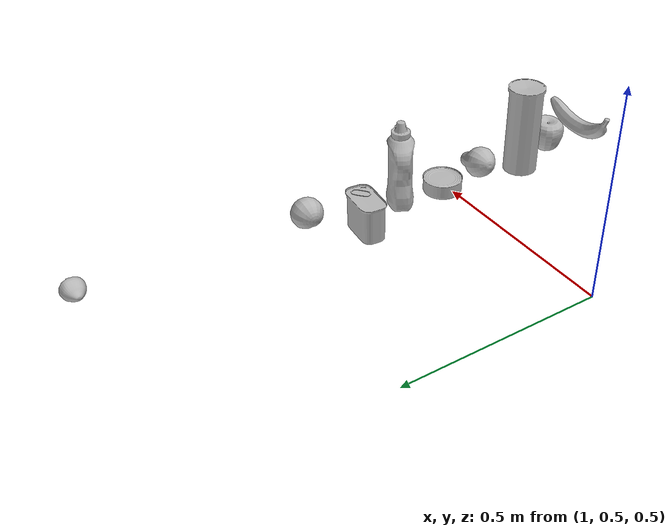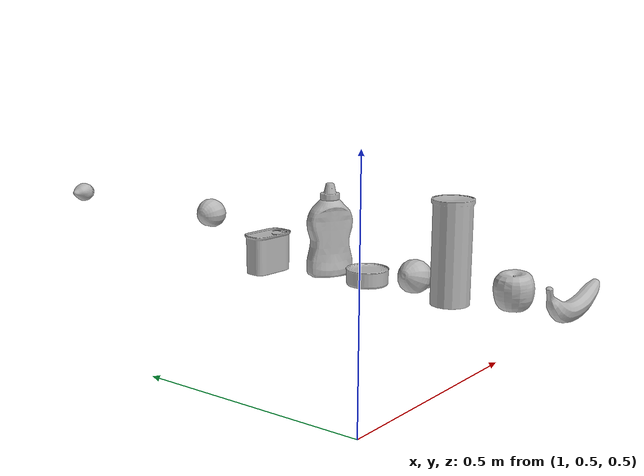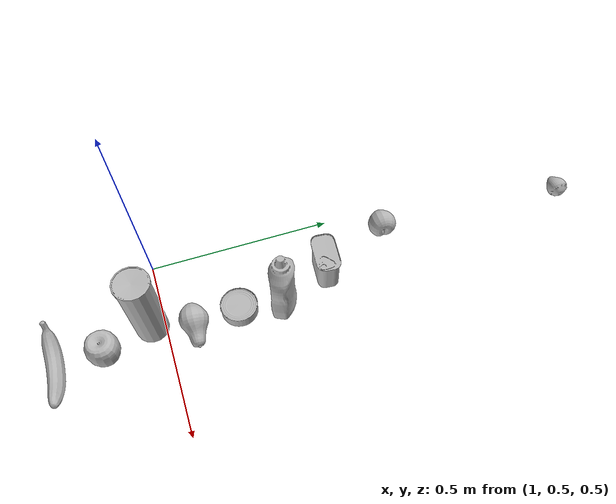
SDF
<sdf version="1.7">
 <world name="default">
  <model name="001_chips_can">
   <link name="link_0">
    <inertial>
     <mass>1</mass>
     <inertia>
      <ixx>0.166667</ixx>
      <ixy>0</ixy>
      <ixz>0</ixz>
      <iyy>0.166667</iyy>
      <iyz>0</iyz>
      <izz>0.166667</izz>
     </inertia>
    </inertial>
    <visual name="visual">
     <geometry><mesh><uri>model://YCB_virtual/meshes/001_chips_can.dae</uri><scale>1 1 1</scale></mesh></geometry>
     <material><lighting>1</lighting><shader type="pixel"/></material>
    </visual>
    <collision name="collision">
     <geometry><mesh><uri>model://YCB_virtual/meshes/001_chips_can.dae</uri><scale>1 1 1</scale></mesh></geometry>
     <surface>
      <friction>
       <ode><mu>1</mu><mu2>1</mu2><fdir1>0 0 0</fdir1><slip1>0</slip1><slip2>0</slip2></ode>
       <torsional>
        <coefficient>1</coefficient>
        <patch_radius>0</patch_radius>
        <surface_radius>0</surface_radius>
        <use_patch_radius>1</use_patch_radius>
        <ode><slip>0</slip></ode>
       </torsional>
      </friction>
      <bounce><restitution_coefficient>0</restitution_coefficient><threshold>1e+06</threshold></bounce>
      <contact>
       <collide_without_contact>0</collide_without_contact>
       <collide_without_contact_bitmask>1</collide_without_contact_bitmask>
       <collide_bitmask>1</collide_bitmask>
       <ode>
        <soft_cfm>0</soft_cfm>
        <soft_erp>0.2</soft_erp>
        <kp>1e+13</kp>
        <kd>1</kd>
        <max_vel>0.01</max_vel>
        <min_depth>0</min_depth>
       </ode>
       <bullet>
        <split_impulse>1</split_impulse>
        <split_impulse_penetration_threshold>-0.01</split_impulse_penetration_threshold>
        <soft_cfm>0</soft_cfm>
        <soft_erp>0.2</soft_erp>
        <kp>1e+13</kp>
        <kd>1</kd>
       </bullet>
      </contact>
     </surface>
    </collision>
   </link>
   <static>0</static>
   <pose>1.27967 0.489298 0.77999 1e-06 2e-06 -0.921269</pose>
  </model>
  <model name="006_mustard_bottle">
   <link name="link_0">
    <inertial>
     <mass>0.567</mass>
     <inertia>
      <ixx>0.166667</ixx>
      <ixy>0</ixy>
      <ixz>0</ixz>
      <iyy>0.166667</iyy>
      <iyz>0</iyz>
      <izz>0.166667</izz>
     </inertia>
    </inertial>
    <visual name="visual">
     <geometry>
      <mesh><uri>model://YCB_virtual/meshes/006_mustard_bottle.dae</uri><scale>1 1 1</scale></mesh>
     </geometry>
     <material><lighting>1</lighting><shader type="pixel"/></material>
    </visual>
    <collision name="collision">
     <geometry>
      <mesh><uri>model://YCB_virtual/meshes/006_mustard_bottle.dae</uri><scale>1 1 1</scale></mesh>
     </geometry>
     <surface>
      <friction>
       <ode><mu>1</mu><mu2>1</mu2><fdir1>0 0 0</fdir1><slip1>0</slip1><slip2>0</slip2></ode>
       <torsional>
        <coefficient>1</coefficient>
        <patch_radius>0</patch_radius>
        <surface_radius>0</surface_radius>
        <use_patch_radius>1</use_patch_radius>
        <ode><slip>0</slip></ode>
       </torsional>
      </friction>
      <bounce><restitution_coefficient>0</restitution_coefficient><threshold>1e+06</threshold></bounce>
      <contact>
       <collide_without_contact>0</collide_without_contact>
       <collide_without_contact_bitmask>1</collide_without_contact_bitmask>
       <collide_bitmask>1</collide_bitmask>
       <ode>
        <soft_cfm>0</soft_cfm>
        <soft_erp>0.2</soft_erp>
        <kp>1e+13</kp>
        <kd>1</kd>
        <max_vel>0.01</max_vel>
        <min_depth>0</min_depth>
       </ode>
       <bullet>
        <split_impulse>1</split_impulse>
        <split_impulse_penetration_threshold>-0.01</split_impulse_penetration_threshold>
        <soft_cfm>0</soft_cfm>
        <soft_erp>0.2</soft_erp>
        <kp>1e+13</kp>
        <kd>1</kd>
       </bullet>
      </contact>
     </surface>
    </collision>
   </link>
   <static>0</static>
   <pose>1.31148 0.793234 0.762003 -1.7e-05 4e-06 -2.04525</pose>
  </model>
  <model name="007_tuna_fish_can">
   <link name="link_0">
    <inertial>
     <mass>0.113</mass>
     <inertia>
      <ixx>0.166667</ixx>
      <ixy>0</ixy>
      <ixz>0</ixz>
      <iyy>0.166667</iyy>
      <iyz>0</iyz>
      <izz>0.166667</izz>
     </inertia>
    </inertial>
    <visual name="visual">
     <geometry>
      <mesh><uri>model://YCB_virtual/meshes/007_tuna_fish_can.dae</uri><scale>1 1 1</scale></mesh>
     </geometry>
     <material><lighting>1</lighting><shader type="pixel"/></material>
    </visual>
    <collision name="collision">
     <geometry>
      <mesh><uri>model://YCB_virtual/meshes/007_tuna_fish_can.dae</uri><scale>1 1 1</scale></mesh>
     </geometry>
     <surface>
      <friction>
       <ode><mu>1</mu><mu2>1</mu2><fdir1>0 0 0</fdir1><slip1>0</slip1><slip2>0</slip2></ode>
       <torsional>
        <coefficient>1</coefficient>
        <patch_radius>0</patch_radius>
        <surface_radius>0</surface_radius>
        <use_patch_radius>1</use_patch_radius>
        <ode><slip>0</slip></ode>
       </torsional>
      </friction>
      <bounce><restitution_coefficient>0</restitution_coefficient><threshold>1e+06</threshold></bounce>
      <contact>
       <collide_without_contact>0</collide_without_contact>
       <collide_without_contact_bitmask>1</collide_without_contact_bitmask>
       <collide_bitmask>1</collide_bitmask>
       <ode>
        <soft_cfm>0</soft_cfm>
        <soft_erp>0.2</soft_erp>
        <kp>1e+13</kp>
        <kd>1</kd>
        <max_vel>0.01</max_vel>
        <min_depth>0</min_depth>
       </ode>
       <bullet>
        <split_impulse>1</split_impulse>
        <split_impulse_penetration_threshold>-0.01</split_impulse_penetration_threshold>
        <soft_cfm>0</soft_cfm>
        <soft_erp>0.2</soft_erp>
        <kp>1e+13</kp>
        <kd>1</kd>
       </bullet>
      </contact>
     </surface>
    </collision>
   </link>
   <static>0</static>
   <pose>1.29953 0.690057 0.696729 3e-06 -2e-06 -0.986104</pose>
  </model>
  <model name="010_potted_meat_can">
   <link name="link_0">
    <inertial>
     <mass>0.34</mass>
     <inertia>
      <ixx>0.166667</ixx>
      <ixy>0</ixy>
      <ixz>0</ixz>
      <iyy>0.166667</iyy>
      <iyz>0</iyz>
      <izz>0.166667</izz>
     </inertia>
    </inertial>
    <visual name="visual">
     <geometry>
      <mesh><uri>model://YCB_virtual/meshes/010_potted_meat_can.dae</uri><scale>1 1 1</scale></mesh>
     </geometry>
     <material><lighting>1</lighting><shader type="pixel"/></material>
    </visual>
    <collision name="collision">
     <geometry>
      <mesh><uri>model://YCB_virtual/meshes/010_potted_meat_can.dae</uri><scale>1 1 1</scale></mesh>
     </geometry>
     <surface>
      <friction>
       <ode><mu>1</mu><mu2>1</mu2><fdir1>0 0 0</fdir1><slip1>0</slip1><slip2>0</slip2></ode>
       <torsional>
        <coefficient>1</coefficient>
        <patch_radius>0</patch_radius>
        <surface_radius>0</surface_radius>
        <use_patch_radius>1</use_patch_radius>
        <ode><slip>0</slip></ode>
       </torsional>
      </friction>
      <bounce><restitution_coefficient>0</restitution_coefficient><threshold>1e+06</threshold></bounce>
      <contact>
       <collide_without_contact>0</collide_without_contact>
       <collide_without_contact_bitmask>1</collide_without_contact_bitmask>
       <collide_bitmask>1</collide_bitmask>
       <ode>
        <soft_cfm>0</soft_cfm>
        <soft_erp>0.2</soft_erp>
        <kp>1e+13</kp>
        <kd>1</kd>
        <max_vel>0.01</max_vel>
        <min_depth>0</min_depth>
       </ode>
       <bullet>
        <split_impulse>1</split_impulse>
        <split_impulse_penetration_threshold>-0.01</split_impulse_penetration_threshold>
        <soft_cfm>0</soft_cfm>
        <soft_erp>0.2</soft_erp>
        <kp>1e+13</kp>
        <kd>1</kd>
       </bullet>
      </contact>
     </surface>
    </collision>
   </link>
   <static>0</static>
   <pose>1.25714 0.912689 0.721409 -0 -5e-06 -1.66025</pose>
  </model>
  <model name="011_banana">
   <link name="link_0">
    <inertial>
     <mass>0.2</mass>
     <inertia>
      <ixx>0.166667</ixx>
      <ixy>0</ixy>
      <ixz>0</ixz>
      <iyy>0.166667</iyy>
      <iyz>0</iyz>
      <izz>0.166667</izz>
     </inertia>
    </inertial>
    <visual name="visual">
     <geometry><mesh><uri>model://YCB_virtual/meshes/011_banana.dae</uri><scale>1 1 1</scale></mesh></geometry>
     <material><lighting>1</lighting><shader type="pixel"/></material>
    </visual>
    <collision name="collision">
     <geometry><mesh><uri>model://YCB_virtual/meshes/011_banana.dae</uri><scale>1 1 1</scale></mesh></geometry>
     <surface>
      <friction>
       <ode><mu>1</mu><mu2>1</mu2><fdir1>0 0 0</fdir1><slip1>0</slip1><slip2>0</slip2></ode>
       <torsional>
        <coefficient>1</coefficient>
        <patch_radius>0</patch_radius>
        <surface_radius>0</surface_radius>
        <use_patch_radius>1</use_patch_radius>
        <ode><slip>0</slip></ode>
       </torsional>
      </friction>
      <bounce><restitution_coefficient>0</restitution_coefficient><threshold>1e+06</threshold></bounce>
      <contact>
       <collide_without_contact>0</collide_without_contact>
       <collide_without_contact_bitmask>1</collide_without_contact_bitmask>
       <collide_bitmask>1</collide_bitmask>
       <ode>
        <soft_cfm>0</soft_cfm>
        <soft_erp>0.2</soft_erp>
        <kp>1e+13</kp>
        <kd>1</kd>
        <max_vel>0.01</max_vel>
        <min_depth>0</min_depth>
       </ode>
       <bullet>
        <split_impulse>1</split_impulse>
        <split_impulse_penetration_threshold>-0.01</split_impulse_penetration_threshold>
        <soft_cfm>0</soft_cfm>
        <soft_erp>0.2</soft_erp>
        <kp>1e+13</kp>
        <kd>1</kd>
       </bullet>
      </contact>
     </surface>
    </collision>
   </link>
   <static>0</static>
   <pose>1.32577 0.268796 0.709151 2.49983 -1.4744 -0.943589</pose>
  </model>
  <model name="012_strawberry">
   <link name="link_0">
    <inertial>
     <mass>0.01</mass>
     <inertia>
      <ixx>0.166667</ixx>
      <ixy>0</ixy>
      <ixz>0</ixz>
      <iyy>0.166667</iyy>
      <iyz>0</iyz>
      <izz>0.166667</izz>
     </inertia>
    </inertial>
    <visual name="visual">
     <geometry><mesh><uri>model://YCB_virtual/meshes/012_strawberry.dae</uri><scale>1 1 1</scale></mesh></geometry>
     <material><lighting>1</lighting><shader type="pixel"/></material>
    </visual>
    <collision name="collision">
     <geometry><mesh><uri>model://YCB_virtual/meshes/012_strawberry.dae</uri><scale>1 1 1</scale></mesh></geometry>
     <surface>
      <friction>
       <ode><mu>1</mu><mu2>1</mu2><fdir1>0 0 0</fdir1><slip1>0</slip1><slip2>0</slip2></ode>
       <torsional>
        <coefficient>1</coefficient>
        <patch_radius>0</patch_radius>
        <surface_radius>0</surface_radius>
        <use_patch_radius>1</use_patch_radius>
        <ode><slip>0</slip></ode>
       </torsional>
      </friction>
      <bounce><restitution_coefficient>0</restitution_coefficient><threshold>1e+06</threshold></bounce>
      <contact>
       <collide_without_contact>0</collide_without_contact>
       <collide_without_contact_bitmask>1</collide_without_contact_bitmask>
       <collide_bitmask>1</collide_bitmask>
       <ode>
        <soft_cfm>0</soft_cfm>
        <soft_erp>0.2</soft_erp>
        <kp>1e+13</kp>
        <kd>1</kd>
        <max_vel>0.01</max_vel>
        <min_depth>0</min_depth>
       </ode>
       <bullet>
        <split_impulse>1</split_impulse>
        <split_impulse_penetration_threshold>-0.01</split_impulse_penetration_threshold>
        <soft_cfm>0</soft_cfm>
        <soft_erp>0.2</soft_erp>
        <kp>1e+13</kp>
        <kd>1</kd>
       </bullet>
      </contact>
     </surface>
    </collision>
   </link>
   <static>0</static>
   <pose>1.26453 1.49463 0.780731 0.102856 -0.02475 -0.002407</pose>
  </model>
  <model name="013_apple">
   <link name="link_0">
    <inertial>
     <mass>0.15</mass>
     <inertia>
      <ixx>0.166667</ixx>
      <ixy>0</ixy>
      <ixz>0</ixz>
      <iyy>0.166667</iyy>
      <iyz>0</iyz>
      <izz>0.166667</izz>
     </inertia>
    </inertial>
    <visual name="visual">
     <geometry><mesh><uri>model://YCB_virtual/meshes/013_apple.dae</uri><scale>1 1 1</scale></mesh></geometry>
     <material><lighting>1</lighting><shader type="pixel"/></material>
    </visual>
    <collision name="collision">
     <geometry><mesh><uri>model://YCB_virtual/meshes/013_apple.dae</uri><scale>1 1 1</scale></mesh></geometry>
     <surface>
      <friction>
       <ode><mu>1</mu><mu2>1</mu2><fdir1>0 0 0</fdir1><slip1>0</slip1><slip2>0</slip2></ode>
       <torsional>
        <coefficient>1</coefficient>
        <patch_radius>0</patch_radius>
        <surface_radius>0</surface_radius>
        <use_patch_radius>1</use_patch_radius>
        <ode><slip>0</slip></ode>
       </torsional>
      </friction>
      <bounce><restitution_coefficient>0</restitution_coefficient><threshold>1e+06</threshold></bounce>
      <contact>
       <collide_without_contact>0</collide_without_contact>
       <collide_without_contact_bitmask>1</collide_without_contact_bitmask>
       <collide_bitmask>1</collide_bitmask>
       <ode>
        <soft_cfm>0</soft_cfm>
        <soft_erp>0.2</soft_erp>
        <kp>1e+13</kp>
        <kd>1</kd>
        <max_vel>0.01</max_vel>
        <min_depth>0</min_depth>
       </ode>
       <bullet>
        <split_impulse>1</split_impulse>
        <split_impulse_penetration_threshold>-0.01</split_impulse_penetration_threshold>
        <soft_cfm>0</soft_cfm>
        <soft_erp>0.2</soft_erp>
        <kp>1e+13</kp>
        <kd>1</kd>
       </bullet>
      </contact>
     </surface>
    </collision>
   </link>
   <static>0</static>
   <pose>1.31777 0.378946 0.716823 -0.008413 0.005372 0.000368</pose>
  </model>
  <model name="015_peach">
   <link name="link_0">
    <inertial>
     <mass>0.12</mass>
     <inertia>
      <ixx>0.166667</ixx>
      <ixy>0</ixy>
      <ixz>0</ixz>
      <iyy>0.166667</iyy>
      <iyz>0</iyz>
      <izz>0.166667</izz>
     </inertia>
    </inertial>
    <visual name="visual">
     <geometry><mesh><uri>model://YCB_virtual/meshes/015_peach.dae</uri><scale>1 1 1</scale></mesh></geometry>
     <material><lighting>1</lighting><shader type="pixel"/></material>
    </visual>
    <collision name="collision">
     <geometry><mesh><uri>model://YCB_virtual/meshes/015_peach.dae</uri><scale>1 1 1</scale></mesh></geometry>
     <surface>
      <friction>
       <ode><mu>1</mu><mu2>1</mu2><fdir1>0 0 0</fdir1><slip1>0</slip1><slip2>0</slip2></ode>
       <torsional>
        <coefficient>1</coefficient>
        <patch_radius>0</patch_radius>
        <surface_radius>0</surface_radius>
        <use_patch_radius>1</use_patch_radius>
        <ode><slip>0</slip></ode>
       </torsional>
      </friction>
      <bounce><restitution_coefficient>0</restitution_coefficient><threshold>1e+06</threshold></bounce>
      <contact>
       <collide_without_contact>0</collide_without_contact>
       <collide_without_contact_bitmask>1</collide_without_contact_bitmask>
       <collide_bitmask>1</collide_bitmask>
       <ode>
        <soft_cfm>0</soft_cfm>
        <soft_erp>0.2</soft_erp>
        <kp>1e+13</kp>
        <kd>1</kd>
        <max_vel>0.01</max_vel>
        <min_depth>0</min_depth>
       </ode>
       <bullet>
        <split_impulse>1</split_impulse>
        <split_impulse_penetration_threshold>-0.01</split_impulse_penetration_threshold>
        <soft_cfm>0</soft_cfm>
        <soft_erp>0.2</soft_erp>
        <kp>1e+13</kp>
        <kd>1</kd>
       </bullet>
      </contact>
     </surface>
    </collision>
   </link>
   <static>0</static>
   <pose>1.2384 1.05482 0.788496 0.021421 -0.087371 8.1e-05</pose>
  </model>
  <model name="016_pear">
   <link name="link_0">
    <inertial>
     <mass>0.08</mass>
     <inertia>
      <ixx>0.166667</ixx>
      <ixy>0</ixy>
      <ixz>0</ixz>
      <iyy>0.166667</iyy>
      <iyz>0</iyz>
      <izz>0.166667</izz>
     </inertia>
    </inertial>
    <visual name="visual">
     <geometry><mesh><uri>model://YCB_virtual/meshes/016_pear.dae</uri><scale>1 1 1</scale></mesh></geometry>
     <material><lighting>1</lighting><shader type="pixel"/></material>
    </visual>
    <collision name="collision">
     <geometry><mesh><uri>model://YCB_virtual/meshes/016_pear.dae</uri><scale>1 1 1</scale></mesh></geometry>
     <surface>
      <friction>
       <ode><mu>1</mu><mu2>1</mu2><fdir1>0 0 0</fdir1><slip1>0</slip1><slip2>0</slip2></ode>
       <torsional>
        <coefficient>1</coefficient>
        <patch_radius>0</patch_radius>
        <surface_radius>0</surface_radius>
        <use_patch_radius>1</use_patch_radius>
        <ode><slip>0</slip></ode>
       </torsional>
      </friction>
      <bounce><restitution_coefficient>0</restitution_coefficient><threshold>1e+06</threshold></bounce>
      <contact>
       <collide_without_contact>0</collide_without_contact>
       <collide_without_contact_bitmask>1</collide_without_contact_bitmask>
       <collide_bitmask>1</collide_bitmask>
       <ode>
        <soft_cfm>0</soft_cfm>
        <soft_erp>0.2</soft_erp>
        <kp>1e+13</kp>
        <kd>1</kd>
        <max_vel>0.01</max_vel>
        <min_depth>0</min_depth>
       </ode>
       <bullet>
        <split_impulse>1</split_impulse>
        <split_impulse_penetration_threshold>-0.01</split_impulse_penetration_threshold>
        <soft_cfm>0</soft_cfm>
        <soft_erp>0.2</soft_erp>
        <kp>1e+13</kp>
        <kd>1</kd>
       </bullet>
      </contact>
     </surface>
    </collision>
   </link>
   <static>0</static>
   <pose>1.31283 0.583258 0.709437 -0.083304 0.301562 -0.047994</pose>
  </model>
 </world>
</sdf>
